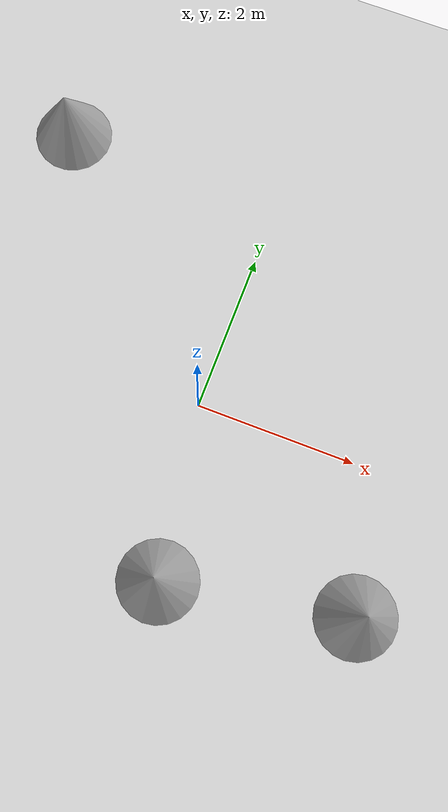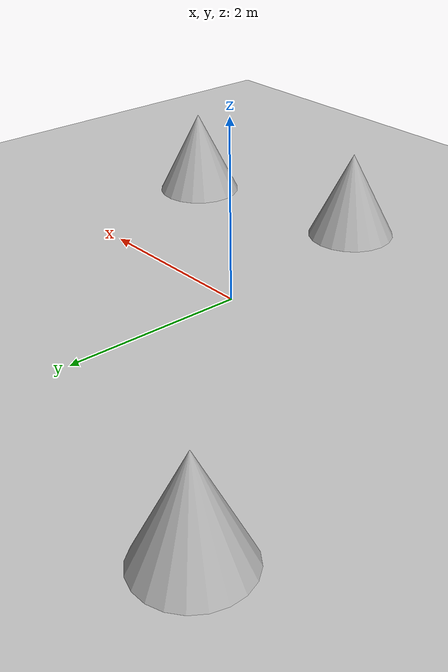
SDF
<sdf version="1.10">
  <world name="empty">
    <physics name="1ms" type="ignored">
      <max_step_size>0.001</max_step_size>
      <real_time_factor>1</real_time_factor>
      <real_time_update_rate>1000</real_time_update_rate>
    </physics>
    <plugin name="gz::sim::systems::Physics" filename="gz-sim-physics-system" />
    <plugin name="gz::sim::systems::UserCommands" filename="gz-sim-user-commands-system" />
    <plugin name="gz::sim::systems::SceneBroadcaster" filename="gz-sim-scene-broadcaster-system" />
    <plugin name="gz::sim::systems::Sensors" filename="gz-sim-sensors-system">
      <render_engine>ogre2</render_engine>
    </plugin>
    <plugin name="gz::sim::systems::Imu" filename="gz-sim-imu-system" />
    <plugin name="gz::sim::systems::Contact" filename="gz-sim-contact-system" />
    <gravity>0 0 -9.8000000000000007</gravity>
    <magnetic_field>5.5644999999999998e-06 2.2875799999999999e-05 -4.2388400000000002e-05</magnetic_field>
    <atmosphere type="adiabatic" />
    <scene>
      <ambient>0.400000006 0.400000006 0.400000006 1</ambient>
      <background>0.699999988 0.699999988 0.699999988 1</background>
      <shadows>true</shadows>
    </scene>
    <model name="ground_plane">
      <static>true</static>
      <link name="link">
        <collision name="collision">
          <geometry>
            <plane>
              <normal>0 0 1</normal>
              <size>100 100</size>
            </plane>
          </geometry>
          <surface>
            <friction>
              <ode />
            </friction>
            <bounce />
            <contact />
          </surface>
        </collision>
        <visual name="visual">
          <geometry>
            <plane>
              <normal>0 0 1</normal>
              <size>100 100</size>
            </plane>
          </geometry>
          <material>
            <ambient>0.800000012 0.800000012 0.800000012 1</ambient>
            <diffuse>0.800000012 0.800000012 0.800000012 1</diffuse>
            <specular>0.800000012 0.800000012 0.800000012 1</specular>
          </material>
        </visual>
        <pose>0 0 0 0 0 0</pose>
        <inertial>
          <pose>0 0 0 0 0 0</pose>
          <mass>1</mass>
          <inertia>
            <ixx>1</ixx>
            <ixy>0</ixy>
            <ixz>0</ixz>
            <iyy>1</iyy>
            <iyz>0</iyz>
            <izz>1</izz>
          </inertia>
        </inertial>
        <enable_wind>false</enable_wind>
      </link>
      <pose>0 0 0 0 0 0</pose>
      <self_collide>false</self_collide>
    </model>
    <model name="cone">
      <pose>0.31339824070078753 -2.1336682065608432 0.49999999993296756 5.2544591086068952e-17 -7.7132841037290368e-10 -3.4184866375544543e-23</pose>
      <link name="cone_link">
        <inertial>
          <inertia>
            <ixx>0.074999999999999997</ixx>
            <ixy>0</ixy>
            <ixz>0</ixz>
            <iyy>0.074999999999999997</iyy>
            <iyz>0</iyz>
            <izz>0.074999999999999997</izz>
          </inertia>
          <mass>1</mass>
          <pose>0 0 0 0 0 0</pose>
        </inertial>
        <collision name="cone_collision">
          <geometry>
            <cone>
              <radius>0.5</radius>
              <length>1</length>
            </cone>
          </geometry>
          <surface>
            <friction>
              <ode />
            </friction>
            <bounce />
            <contact />
          </surface>
        </collision>
        <visual name="cone_visual">
          <geometry>
            <cone>
              <radius>0.5</radius>
              <length>1</length>
            </cone>
          </geometry>
          <material>
            <ambient>0.300000012 0.300000012 0.300000012 1</ambient>
            <diffuse>0.699999988 0.699999988 0.699999988 1</diffuse>
            <specular>1 1 1 1</specular>
          </material>
        </visual>
        <pose>0 0 0 0 0 0</pose>
        <enable_wind>false</enable_wind>
      </link>
      <static>false</static>
      <self_collide>false</self_collide>
    </model>
    <light name="sun" type="directional">
      <pose>0 0 10 0 0 0</pose>
      <cast_shadows>true</cast_shadows>
      <intensity>1</intensity>
      <direction>-0.5 0.10000000000000001 -0.90000000000000002</direction>
      <diffuse>1 1 1 1</diffuse>
      <specular>0.5 0.5 0.5 1</specular>
      <attenuation>
        <range>1000</range>
        <linear>0.01</linear>
        <constant>0.90000000000000002</constant>
        <quadratic>0.001</quadratic>
      </attenuation>
      <spot>
        <inner_angle>0</inner_angle>
        <outer_angle>0</outer_angle>
        <falloff>0</falloff>
      </spot>
    </light>
  <model name="goal_cone_01"><pose>-2.851 2.807 0.5 5.254459108606895e-17 -7.713284103729037e-10 3.0016</pose><static>false</static><self_collide>false</self_collide><link name="goal_cone_link"><pose>0 0 0 0 0 0</pose><inertial><pose>0 0 0 0 0 0</pose><mass>1.0</mass><inertia><ixx>0.075</ixx><ixy>0</ixy><ixz>0</ixz><iyy>0.075</iyy><iyz>0</iyz><izz>0.075</izz></inertia></inertial><collision name="goal_cone_collision"><geometry><cone><radius>0.5</radius><length>1.0</length></cone></geometry></collision><visual name="goal_cone_visual"><geometry><cone><radius>0.5</radius><length>1.0</length></cone></geometry><material><ambient>0.699999988 0.699999988 0.699999988 1.0</ambient><diffuse>0.699999988 0.699999988 0.699999988 1.0</diffuse><specular>1 1 1 1</specular></material></visual></link></model><model name="goal_cone_02"><pose>2.607 -1.691 0.5 5.254459108606895e-17 -7.713284103729037e-10 -2.7528</pose><static>false</static><self_collide>false</self_collide><link name="goal_cone_link"><pose>0 0 0 0 0 0</pose><inertial><pose>0 0 0 0 0 0</pose><mass>1.0</mass><inertia><ixx>0.075</ixx><ixy>0</ixy><ixz>0</ixz><iyy>0.075</iyy><iyz>0</iyz><izz>0.075</izz></inertia></inertial><collision name="goal_cone_collision"><geometry><cone><radius>0.5</radius><length>1.0</length></cone></geometry></collision><visual name="goal_cone_visual"><geometry><cone><radius>0.5</radius><length>1.0</length></cone></geometry><material><ambient>0.699999988 0.699999988 0.699999988 1.0</ambient><diffuse>0.699999988 0.699999988 0.699999988 1.0</diffuse><specular>1 1 1 1</specular></material></visual></link></model></world>
</sdf>
